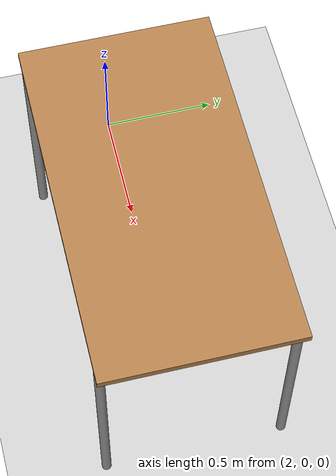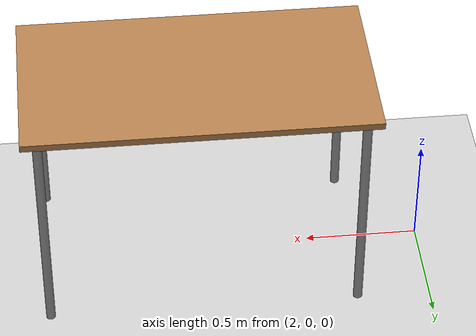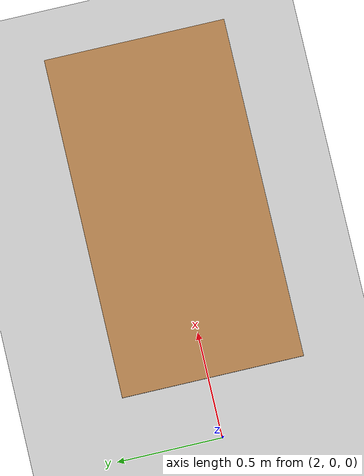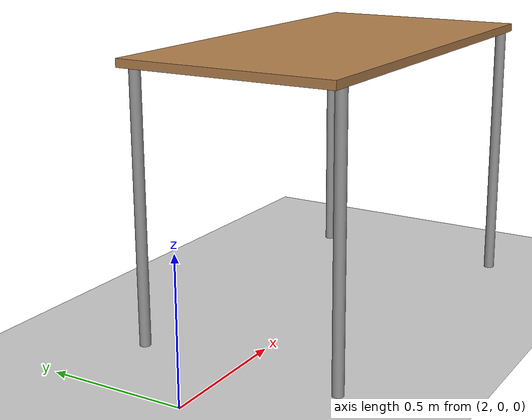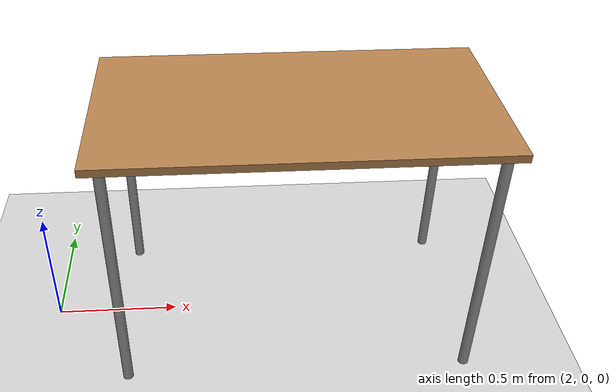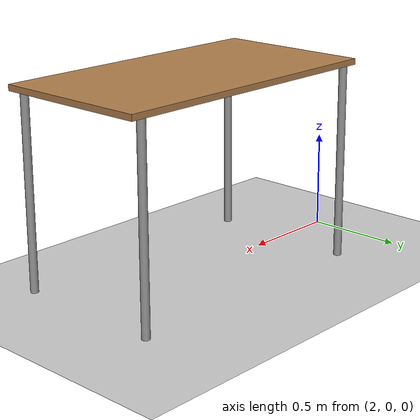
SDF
<?xml version="1.0" ?>
<sdf version="1.4">
  <!-- We use a custom world for the rrbot so that the camera angle is launched correctly -->

    <world name="default">
        <include>
            <uri>model://ground_plane</uri>
        </include>

        <!-- Global light source -->
        <include>
            <uri>model://sun</uri>
        </include>

        <include>
            <uri>model://table</uri>
            <pose>3 0.000000 0.000000 0.000000 0.000000 0.000000</pose>
        </include>

        <gui fullscreen='0'>
            <camera name='user_camera'>
                <pose>4.927360 -4.376610 3.740080 0.000000 0.275643 2.356190</pose>
                <view_controller>orbit</view_controller>
            </camera>
        </gui>

    </world>
</sdf>

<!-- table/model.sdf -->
<sdf version="1.5">
  <model name="table">
    <static>true</static>
    <link name="link">
      <collision name="surface">
        <pose>0 0 1.0 0 0 0</pose>
        <geometry>
          <box>
            <size>1.5 0.8 0.03</size>
          </box>
        </geometry>
        <surface>
          <friction>
            <ode>
              <mu>0.6</mu>
              <mu2>0.6</mu2>
            </ode>
          </friction>
        </surface>
      </collision>
      <visual name="visual1">
        <pose>0 0 1.0 0 0 0</pose>
        <geometry>
          <box>
            <size>1.5 0.8 0.03</size>
          </box>
        </geometry>
        <material>
          <script>
            <uri>model://media/materials/scripts/gazebo.material</uri>
            <name>Gazebo/Wood</name>
          </script>
        </material>
      </visual>
      <collision name="front_left_leg">
        <pose>0.68 0.38 0.5 0 0 0</pose>
        <geometry>
          <cylinder>
            <radius>0.02</radius>
            <length>1.0</length>
          </cylinder>
        </geometry>
      </collision>
      <visual name="front_left_leg">
        <pose>0.68 0.38 0.5 0 0 0</pose>
        <geometry>
          <cylinder>
            <radius>0.02</radius>
            <length>1.0</length>
          </cylinder>
        </geometry>
        <material>
          <script>
            <uri>model://media/materials/scripts/gazebo.material</uri>
            <name>Gazebo/Grey</name>
          </script>
        </material>
      </visual>
      <collision name="front_right_leg">
        <pose>0.68 -0.38 0.5 0 0 0</pose>
        <geometry>
          <cylinder>
            <radius>0.02</radius>
            <length>1.0</length>
          </cylinder>
        </geometry>
      </collision>
      <visual name="front_right_leg">
        <pose>0.68 -0.38 0.5 0 0 0</pose>
        <geometry>
          <cylinder>
            <radius>0.02</radius>
            <length>1.0</length>
          </cylinder>
        </geometry>
        <material>
          <script>
            <uri>model://media/materials/scripts/gazebo.material</uri>
            <name>Gazebo/Grey</name>
          </script>
        </material>
      </visual>
      <collision name="back_right_leg">
        <pose>-0.68 -0.38 0.5 0 0 0</pose>
        <geometry>
          <cylinder>
            <radius>0.02</radius>
            <length>1.0</length>
          </cylinder>
        </geometry>
      </collision>
      <visual name="back_right_leg">
        <pose>-0.68 -0.38 0.5 0 0 0</pose>
        <geometry>
          <cylinder>
            <radius>0.02</radius>
            <length>1.0</length>
          </cylinder>
        </geometry>
        <material>
          <script>
            <uri>model://media/materials/scripts/gazebo.material</uri>
            <name>Gazebo/Grey</name>
          </script>
        </material>
      </visual>
      <collision name="back_left_leg">
        <pose>-0.68 0.38 0.5 0 0 0</pose>
        <geometry>
          <cylinder>
            <radius>0.02</radius>
            <length>1.0</length>
          </cylinder>
        </geometry>
      </collision>
      <visual name="back_left_leg">
        <pose>-0.68 0.38 0.5 0 0 0</pose>
        <geometry>
          <cylinder>
            <radius>0.02</radius>
            <length>1.0</length>
          </cylinder>
        </geometry>
        <material>
          <script>
            <uri>model://media/materials/scripts/gazebo.material</uri>
            <name>Gazebo/Grey</name>
          </script>
        </material>
      </visual>
    </link>
  </model>
</sdf>
